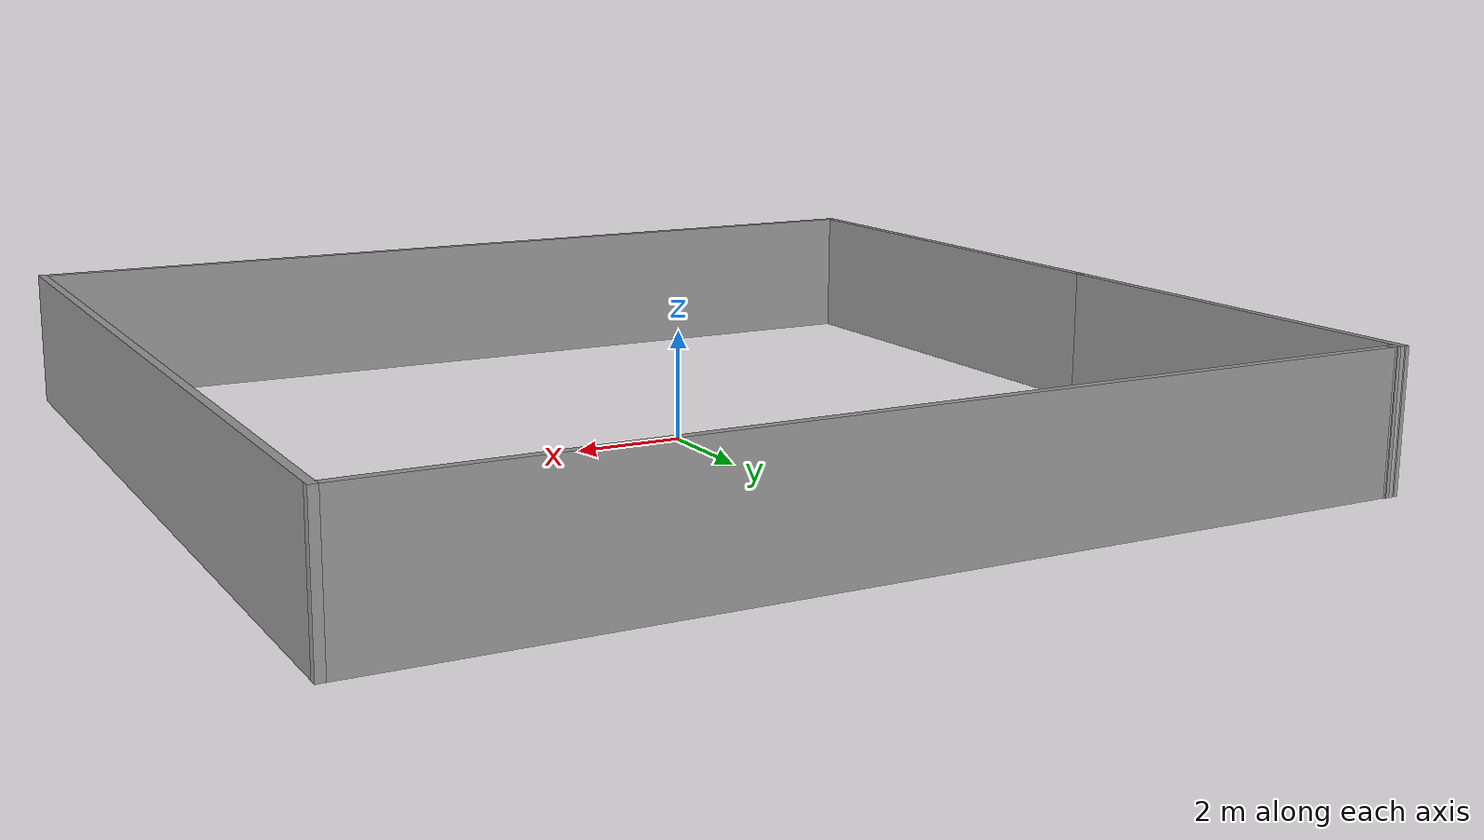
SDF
<?xml version='1.0'?>
<sdf version='1.7'>
  <model name='compound'>
    <pose>0.486446 0.114929 0 0 -0 0</pose>
    <link name='Wall_3'>
      <collision name='Wall_3_Collision'>
        <geometry>
          <box>
            <size>9.25 0.15 2.5</size>
          </box>
        </geometry>
        <pose>0 0 1.25 0 -0 0</pose>
      </collision>
      <visual name='Wall_3_Visual'>
        <pose>0 0 1.25 0 -0 0</pose>
        <geometry>
          <box>
            <size>9.25 0.15 2.5</size>
          </box>
        </geometry>
        <material>
          <script>
            <uri>file://media/materials/scripts/gazebo.material</uri>
            <name>Gazebo/Grey</name>
          </script>
          <ambient>1 1 1 1</ambient>
        </material>
        <meta>
          <layer>0</layer>
        </meta>
      </visual>
      <pose>-9.04975 -4.02137 0 0 -0 -1.5708</pose>
    </link>
    <link name='Wall_4'>
      <collision name='Wall_4_Collision'>
        <geometry>
          <box>
            <size>18.25 0.15 2.5</size>
          </box>
        </geometry>
        <pose>0 0 1.25 0 -0 0</pose>
      </collision>
      <visual name='Wall_4_Visual'>
        <pose>0 0 1.25 0 -0 0</pose>
        <geometry>
          <box>
            <size>18.25 0.15 2.5</size>
          </box>
        </geometry>
        <material>
          <script>
            <uri>file://media/materials/scripts/gazebo.material</uri>
            <name>Gazebo/Grey</name>
          </script>
          <ambient>1 1 1 1</ambient>
        </material>
        <meta>
          <layer>0</layer>
        </meta>
      </visual>
      <pose>0.000248 -8.57137 0 0 -0 0</pose>
    </link>
    <link name='Wall_5'>
      <collision name='Wall_5_Collision'>
        <geometry>
          <box>
            <size>17.25 0.15 2.5</size>
          </box>
        </geometry>
        <pose>0 0 1.25 0 -0 0</pose>
      </collision>
      <visual name='Wall_5_Visual'>
        <pose>0 0 1.25 0 -0 0</pose>
        <geometry>
          <box>
            <size>17.25 0.15 2.5</size>
          </box>
        </geometry>
        <material>
          <script>
            <uri>file://media/materials/scripts/gazebo.material</uri>
            <name>Gazebo/Grey</name>
          </script>
          <ambient>1 1 1 1</ambient>
        </material>
        <meta>
          <layer>0</layer>
        </meta>
      </visual>
      <pose>9.05025 -0.021368 0 0 -0 1.5708</pose>
    </link>
    <link name='Wall_6'>
      <collision name='Wall_6_Collision'>
        <geometry>
          <box>
            <size>18 0.15 2.5</size>
          </box>
        </geometry>
        <pose>0 0 1.25 0 -0 0</pose>
      </collision>
      <visual name='Wall_6_Visual'>
        <pose>0 0 1.25 0 -0 0</pose>
        <geometry>
          <box>
            <size>18 0.15 2.5</size>
          </box>
        </geometry>
        <material>
          <script>
            <uri>file://media/materials/scripts/gazebo.material</uri>
            <name>Gazebo/Grey</name>
          </script>
          <ambient>1 1 1 1</ambient>
        </material>
        <meta>
          <layer>0</layer>
        </meta>
      </visual>
      <pose>0.125248 8.52863 0 0 -0 3.14159</pose>
    </link>
    <link name='Wall_7'>
      <collision name='Wall_7_Collision'>
        <geometry>
          <box>
            <size>0.25 0.15 2.5</size>
          </box>
        </geometry>
        <pose>0 0 1.25 0 -0 0</pose>
      </collision>
      <visual name='Wall_7_Visual'>
        <pose>0 0 1.25 0 -0 0</pose>
        <geometry>
          <box>
            <size>0.25 0.15 2.5</size>
          </box>
        </geometry>
        <material>
          <script>
            <uri>file://media/materials/scripts/gazebo.material</uri>
            <name>Gazebo/Grey</name>
          </script>
          <ambient>1 1 1 1</ambient>
        </material>
        <meta>
          <layer>0</layer>
        </meta>
      </visual>
      <pose>-8.84805 8.54157 0 0 -0 2.87979</pose>
    </link>
    <link name='Wall_8'>
      <collision name='Wall_8_Collision'>
        <geometry>
          <box>
            <size>0.25 0.15 2.5</size>
          </box>
        </geometry>
        <pose>0 0 1.25 0 -0 0</pose>
      </collision>
      <visual name='Wall_8_Visual'>
        <pose>0 0 1.25 0 -0 0</pose>
        <geometry>
          <box>
            <size>0.25 0.15 2.5</size>
          </box>
        </geometry>
        <material>
          <script>
            <uri>file://media/materials/scripts/gazebo.material</uri>
            <name>Gazebo/Grey</name>
          </script>
          <ambient>1 1 1 1</ambient>
        </material>
        <meta>
          <layer>0</layer>
        </meta>
      </visual>
      <pose>-8.94635 8.55451 0 0 -0 3.14159</pose>
    </link>
    <link name='Wall_9'>
      <collision name='Wall_9_Collision'>
        <geometry>
          <box>
            <size>8.17606 0.15 2.5</size>
          </box>
        </geometry>
        <pose>0 0 1.25 0 -0 0</pose>
      </collision>
      <visual name='Wall_9_Visual'>
        <pose>0 0 1.25 0 -0 0</pose>
        <geometry>
          <box>
            <size>8.17606 0.15 2.5</size>
          </box>
        </geometry>
        <material>
          <script>
            <uri>file://media/materials/scripts/gazebo.material</uri>
            <name>Gazebo/Grey</name>
          </script>
          <ambient>1 1 1 1</ambient>
        </material>
        <meta>
          <layer>0</layer>
        </meta>
      </visual>
      <pose>-9.02305 4.54157 0 0 -0 -1.57745</pose>
    </link>
    <static>1</static>
  </model>
</sdf>
